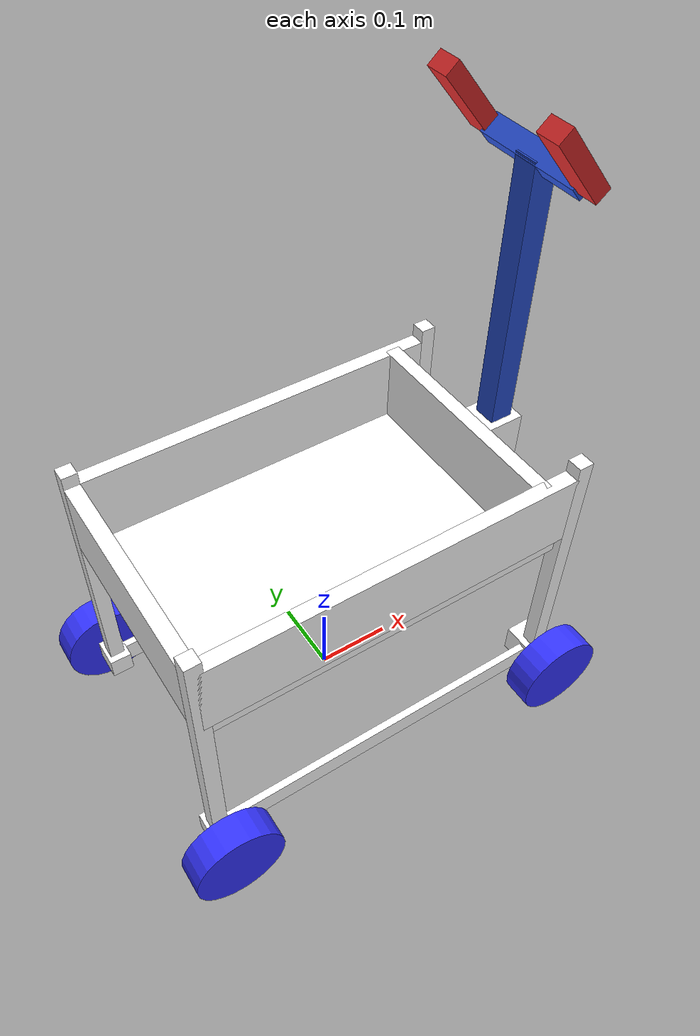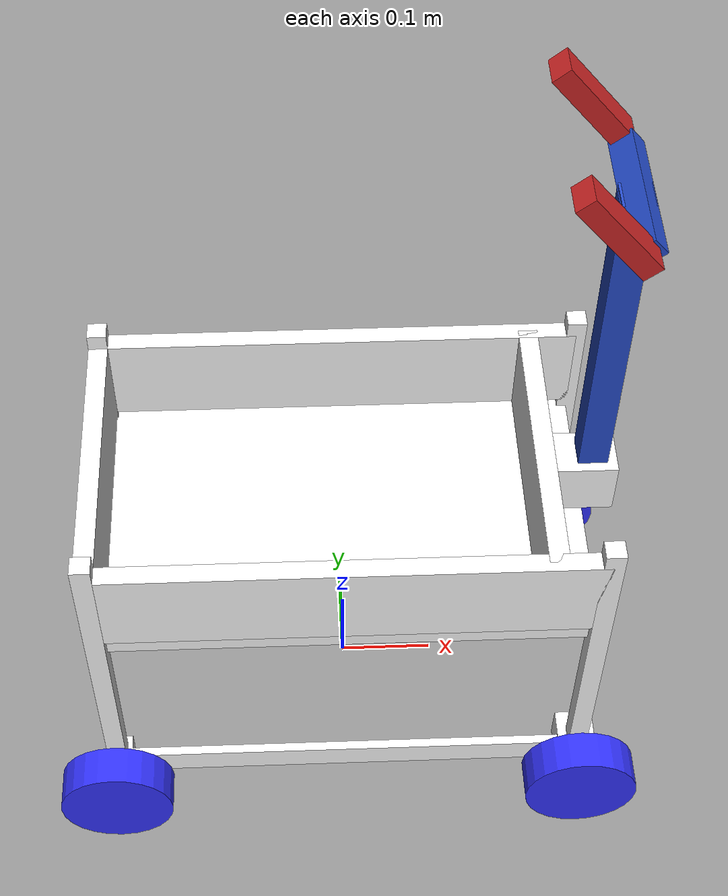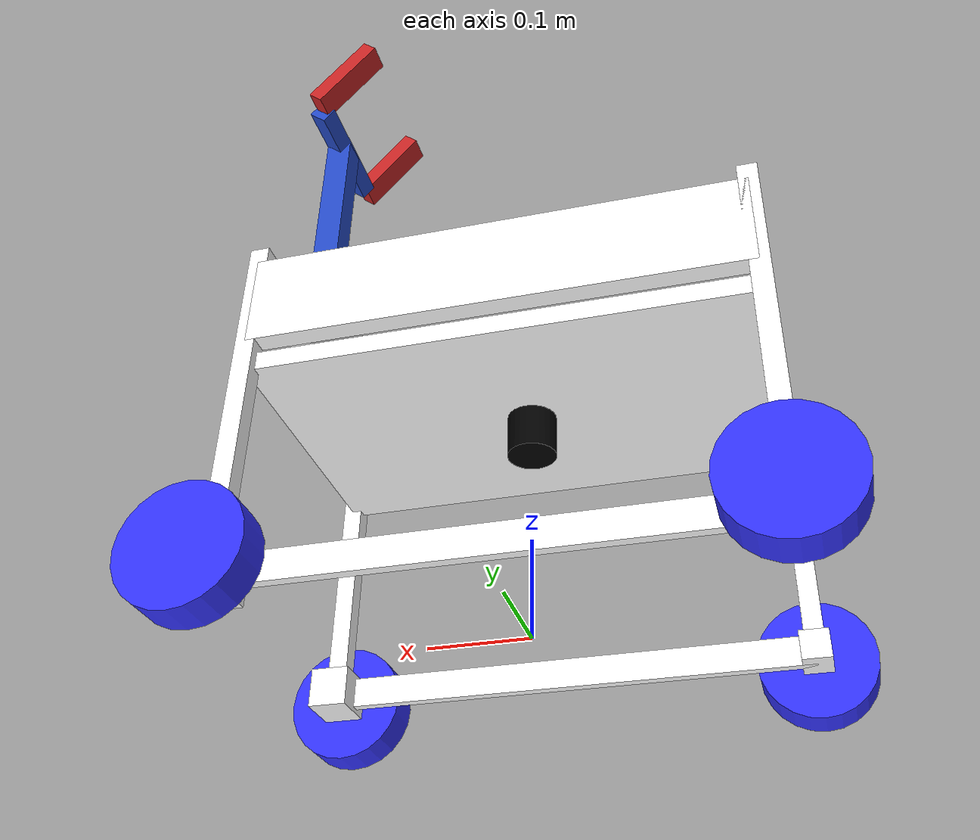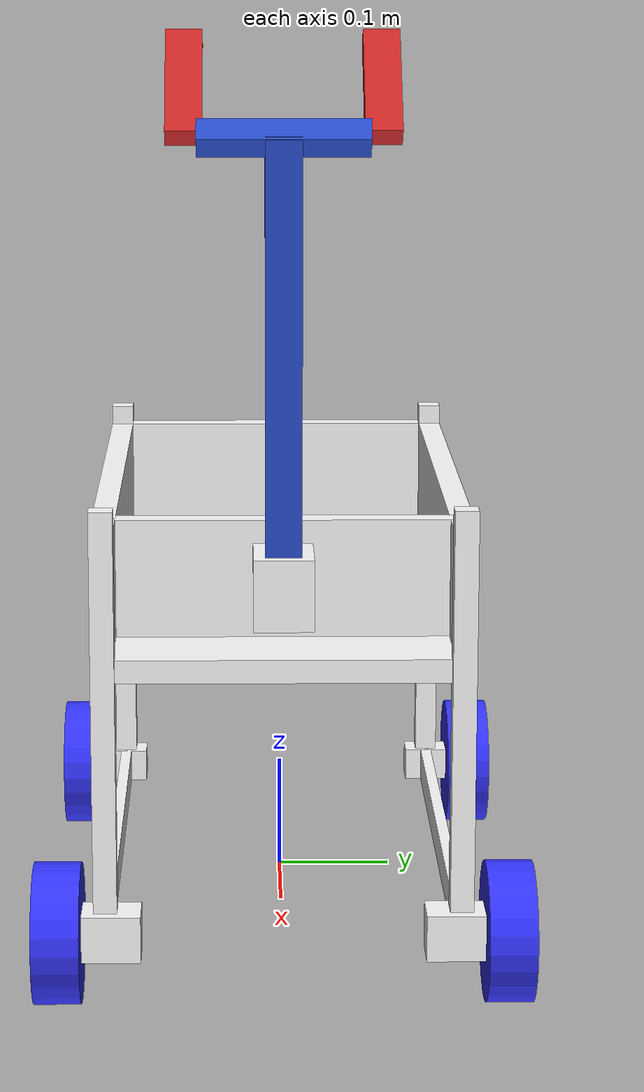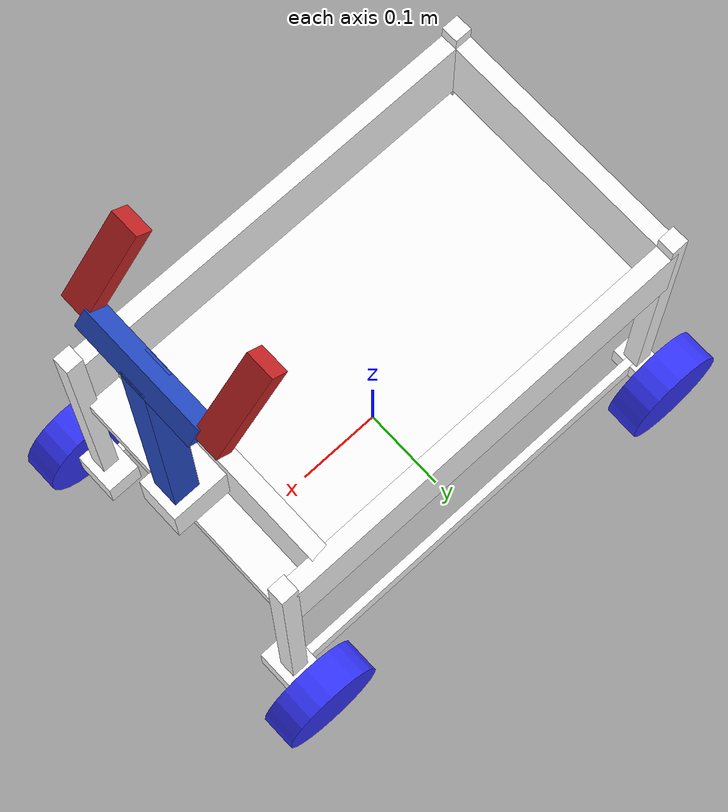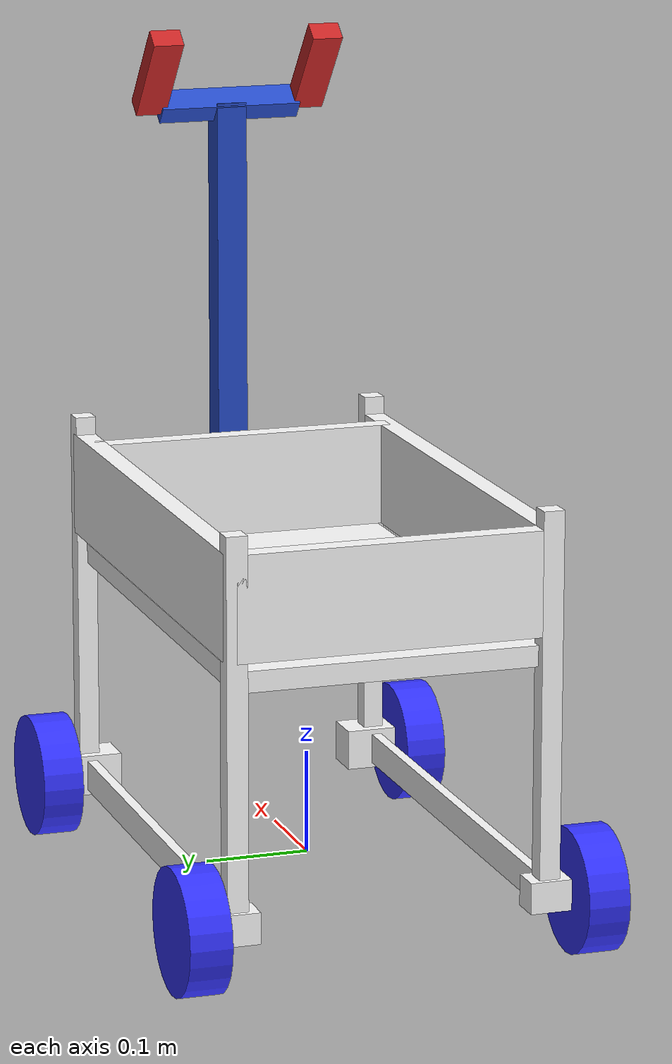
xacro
<?xml version="1.0"?>
<robot xmlns:xacro="http://www.ros.org/wiki/xacro"  name="robot">
    <xacro:include filename="robotproject_core.xacro" />
    <xacro:include filename="gazebo_control.xacro" />
    <xacro:include filename="grippu.xacro" />
    <xacro:include filename="lidar.xacro" />
    <xacro:include filename="arm_tr.xacro" />
    <xacro:include filename="gripper_tr.xacro" />
    <!--xacro:drive_controller/-->

    <ros2_control name="gripper_robot_gazebo_system" type="system">
        <hardware>
            <plugin>gazebo_ros2_control/GazeboSystem</plugin>
        </hardware>
        <xacro:arm_tr/>
        <xacro:gripper1_tr/>
        <xacro:gripper2_tr/>
    </ros2_control>
    <xacro:robot_controller/>
</robot>

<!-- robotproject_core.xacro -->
<robot xmlns:xacro="http://www.ros.org/wiki/xacro" >
<xacro:include filename="inertial_macros.xacro" />
    <material name="white">
        <color rgba="1 1 1 1" />
    </material>

    <material name="orange">
        <color rgba="1 0.3 0.1 1"/>
    </material>

    <material name="blue">
        <color rgba="0.2 0.2 1 1"/>
    </material>

    <material name="black">
        <color rgba="0 0 0 1"/>
    </material>

    <material name="red">
        <color rgba="1 0 0 1"/>
    </material>

    <!-- BASE LINK -->

    <link name="base_link">

    </link>

    <!-- BASE_FOOTPRINT LINK -->

    <joint name="base_footprint_joint" type="fixed">
    <parent link="base_link"/>
    <child link="base_footprint"/>
    <origin xyz="0 0 0" rpy="0 0 0"/>
    </joint>

    <link name="base_footprint">
    </link>

    <joint name="chassis_joint" type="fixed">
    <parent link="base_link"/>
    <child link="chassis"/>
    <origin xyz="0 0 0"/>
    </joint>

    <link name="chassis">
    <visual>
        <origin xyz="0.0 0 0.25" rpy="0 0 0"/>
        <geometry>
            <box size="0.5 0.3 0.02"/>
            <!--mesh filename="file:///home/tien/colcon_ws/articubot_one/description/body.dae" scale="1 1 1"/-->
        </geometry>
        <material name="white"/>
    </visual>
    <collision>
        <origin xyz="0.0 0 0.25" rpy="0 0 0"/>
        <geometry>
            <box size="0.5 0.3 0.02"/>
            <!--mesh filename="file:///home/tien/colcon_ws/articubot_one/description/body.dae" scale="1 1 1"/-->
        </geometry>
    </collision>
    <xacro:inertial_box mass="25" x="0.5" y="0.3" z="0.02">
        <origin xyz="0 0 0.25" rpy="0 0 0"/>
    </xacro:inertial_box>
    </link>
    <gazebo reference="chassis">
    <material>Gazebo/White</material>
    </gazebo>

    <joint name="chassis_joint1" type="fixed">
    <parent link="base_link"/>
    <child link="chassissidel"/>
    <origin xyz="0 0 0"/>
    </joint>

    <link name="chassissidel">
    <visual>
        <origin xyz="0 0.15 0.32" rpy="0 0 0"/>
        <geometry>
            <box size="0.5 0.02 0.1"/>
        </geometry>
        <material name="white"/>
    </visual>
    <collision>
        <origin xyz="0 0.15 0.32" rpy="0 0 0"/>
        <geometry>
            <box size="0.5 0.02 0.1"/>
        </geometry>
    </collision>
    <xacro:inertial_box mass="0.75" x="0.5" y="0.02" z="0.1">
        <origin xyz="0 0.15 0.32" rpy="0 0 0"/>
    </xacro:inertial_box>
    </link>
    <gazebo reference="chassissidel">
    <material>Gazebo/White</material>
    </gazebo>

    <joint name="chassis_joint2" type="fixed">
    <parent link="base_link"/>
    <child link="chassissider"/>
    <origin xyz="0 0 0"/>
    </joint>

    <link name="chassissider">
    <visual>
        <origin xyz="0 -0.15 0.32" rpy="0 0 0"/>
        <geometry>
            <box size="0.5 0.02 0.1"/>
        </geometry>
        <material name="white"/>
    </visual>
    <collision>
        <origin xyz="0 -0.15 0.32" rpy="0 0 0"/>
        <geometry>
            <box size="0.5 0.02 0.1"/>
        </geometry>
    </collision>
    <xacro:inertial_box mass="0.75" x="0.5" y="0.02" z="0.1">
        <origin xyz="0 -0.15 0.32" rpy="0 0 0"/>
    </xacro:inertial_box>
    </link>
    <gazebo reference="chassissider">
    <material>Gazebo/White</material>
    </gazebo>

    <joint name="chassis_joint3" type="fixed">
    <parent link="base_link"/>
    <child link="chassissidef"/>
    <origin xyz="0 0 0"/>
    </joint>

    <link name="chassissidef">
    <visual>
        <origin xyz="0.2 0 0.32" rpy="0 0 0"/>
        <geometry>
            <box size="0.02 0.3 0.1"/>
        </geometry>
        <material name="white"/>
    </visual>
    <collision>
        <origin xyz="0.2 0 0.32" rpy="0 0 0"/>
        <geometry>
            <box size="0.02 0.3 0.1"/>
        </geometry>
    </collision>
    </link>
    <gazebo reference="chassissidef">
    <material>Gazebo/White</material>
    </gazebo>

    <joint name="chassis_joint4" type="fixed">
    <parent link="base_link"/>
    <child link="chassissideb"/>
    <origin xyz="0 0 0"/>
    </joint>

    <link name="chassissideb">
    <visual>
        <origin xyz="-0.25 0 0.32" rpy="0 0 0"/>
        <geometry>
            <box size="0.02 0.3 0.1"/>
        </geometry>
        <material name="white"/>
    </visual>
    <collision>
        <origin xyz="-0.25 0 0.32" rpy="0 0 0"/>
        <geometry>
            <box size="0.02 0.3 0.1"/>
        </geometry>
    </collision>
    </link>
    <gazebo reference="chassissideb">
    <material>Gazebo/White</material>
    </gazebo>

    <joint name="chassis_joint5" type="fixed">
    <parent link="base_link"/>
    <child link="sao_fl"/>
    <origin xyz="0 0 0"/>
    </joint>

    <link name="sao_fl">
    <visual>
        <origin xyz="0.25 -0.15 0.2" rpy="0 0 0"/>
        <geometry>
            <box size="0.02 0.02 0.375"/>
        </geometry>
        <material name="white"/>
    </visual>
    <collision>
        <origin xyz="0.25 -0.15 0.2" rpy="0 0 0"/>
        <geometry>
            <box size="0.02 0.02 0.375"/>
        </geometry>
    </collision>
    </link>
    <gazebo reference="sao_fl">
    <material>Gazebo/White</material>
    </gazebo>

    <joint name="chassis_joint6" type="fixed">
    <parent link="base_link"/>
    <child link="sao_fr"/>
    <origin xyz="0 0 0"/>
    </joint>

    <link name="sao_fr">
    <visual>
        <origin xyz="0.25 0.15 0.2" rpy="0 0 0"/>
        <geometry>
            <box size="0.02 0.02 0.375"/>
        </geometry>
        <material name="white"/>
    </visual>
    <collision>
        <origin xyz="0.25 0.15 0.2" rpy="0 0 0"/>
        <geometry>
            <box size="0.02 0.02 0.375"/>
        </geometry>
    </collision>
    </link>
    <gazebo reference="sao_fr">
    <material>Gazebo/White</material>
    </gazebo>

    <joint name="chassis_joint7" type="fixed">
    <parent link="base_link"/>
    <child link="sao_br"/>
    <origin xyz="0 0 0"/>
    </joint>

    <link name="sao_br">
    <visual>
        <origin xyz="-0.25 0.15 0.2" rpy="0 0 0"/>
        <geometry>
            <box size="0.02 0.02 0.375"/>
        </geometry>
        <material name="white"/>
    </visual>
    <collision>
        <origin xyz="-0.25 0.15 0.2" rpy="0 0 0"/>
        <geometry>
            <box size="0.02 0.02 0.375"/>
        </geometry>
    </collision>
    </link>
    <gazebo reference="sao_br">
    <material>Gazebo/White</material>
    </gazebo>

    <joint name="chassis_joint8" type="fixed">
    <parent link="base_link"/>
    <child link="sao_bl"/>
    <origin xyz="0 0 0"/>
    </joint>

    <link name="sao_bl">
    <visual>
        <origin xyz="-0.25 -0.15 0.2" rpy="0 0 0"/>
        <geometry>
            <box size="0.02 0.02 0.375"/>
        </geometry>
        <material name="white"/>
    </visual>
    <collision>
        <origin xyz="-0.25 -0.15 0.2" rpy="0 0 0"/>
        <geometry>
            <box size="0.02 0.02 0.375"/>
        </geometry>
    </collision>
    </link>
    <gazebo reference="sao_bl">
    <material>Gazebo/White</material>
    </gazebo>

    <joint name="chassis_joint9" type="fixed">
    <parent link="base_link"/>
    <child link="grippermotor"/>
    <origin xyz="0 0 0"/>
    </joint>

    <link name="grippermotor">
    <visual>
        <origin xyz="0.24 0 0.32" rpy="0 0 0"/>
        <geometry>
            <box size="0.07 0.05 0.06"/>
        </geometry>
        <material name="white"/>
    </visual>
    <collision>
        <origin xyz="0.24 0 0.32" rpy="0 0 0"/>
        <geometry>
            <box size="0.07 0.05 0.06"/>
        </geometry>
    </collision>
    </link>
    <gazebo reference="grippermotor">
    <material>Gazebo/White</material>
    </gazebo>

    <joint name="chassis_joint10" type="fixed">
    <parent link="base_link"/>
    <child link="drivemotor_fl"/>
    <origin xyz="0 0 0"/>
    </joint>

    <link name="drivemotor_fl">
    <visual>
        <origin xyz="0.25 0.15 0.023" rpy="0 0 0"/>
        <geometry>
            <box size="0.04 0.06 0.04"/>
        </geometry>
        <material name="white"/>
    </visual>
    <collision>
        <origin xyz="0.25 0.15 0.023" rpy="0 0 0"/>
        <geometry>
            <box size="0.04 0.06 0.04"/>
        </geometry>
    </collision>
    </link>
    <gazebo reference="drivemotor_fl">
    <material>Gazebo/White</material>
    </gazebo>

    <joint name="chassis_joint11" type="fixed">
    <parent link="base_link"/>
    <child link="drivemotor_fr"/>
    <origin xyz="0 0 0"/>
    </joint>

    <link name="drivemotor_fr">
    <visual>
        <origin xyz="0.25 -0.15 0.023" rpy="0 0 0"/>
        <geometry>
            <box size="0.04 0.06 0.04"/>
        </geometry>
        <material name="white"/>
    </visual>
    <collision>
        <origin xyz="0.25 -0.15 0.023" rpy="0 0 0"/>
        <geometry>
            <box size="0.04 0.06 0.04"/>
        </geometry>
    </collision>
    </link>
    <gazebo reference="drivemotor_fr">
    <material>Gazebo/White</material>
    </gazebo>

    <joint name="chassis_joint12" type="fixed">
    <parent link="base_link"/>
    <child link="drivemotor_br"/>
    <origin xyz="0 0 0"/>
    </joint>

    <link name="drivemotor_br">
    <visual>
        <origin xyz="-0.25 -0.15 0.023" rpy="0 0 0"/>
        <geometry>
            <box size="0.03 0.04 0.03"/>
        </geometry>
        <material name="white"/>
    </visual>
    <collision>
        <origin xyz="-0.25 -0.15 0.023" rpy="0 0 0"/>
        <geometry>
            <box size="0.03 0.04 0.03"/>
        </geometry>
    </collision>
    </link>
    <gazebo reference="drivemotor_br">
    <material>Gazebo/White</material>
    </gazebo>

    <joint name="chassis_joint13" type="fixed">
    <parent link="base_link"/>
    <child link="drivemotor_bl"/>
    <origin xyz="0 0 0"/>
    </joint>

    <link name="drivemotor_bl">
    <visual>
        <origin xyz="-0.25 0.15 0.023" rpy="0 0 0"/>
        <geometry>
            <box size="0.03 0.04 0.03"/>
        </geometry>
        <material name="white"/>
    </visual>
    <collision>
        <origin xyz="-0.25 0.15 0.023" rpy="0 0 0"/>
        <geometry>
            <box size="0.03 0.04 0.03"/>
        </geometry>
    </collision>
    </link>
    <gazebo reference="drivemotor_bl">
    <material>Gazebo/White</material>
    </gazebo>

    <joint name="chassis_joint14" type="fixed">
    <parent link="base_link"/>
    <child link="sidebot_l"/>
    <origin xyz="0 0 0"/>
    </joint>

    <link name="sidebot_l">
    <visual>
        <origin xyz="0 0.15 0.023" rpy="0 0 0"/>
        <geometry>
            <box size="0.5 0.01 0.03"/>
        </geometry>
        <material name="white"/>
    </visual>
    <collision>
        <origin xyz="0 0.15 0.023" rpy="0 0 0"/>
        <geometry>
            <box size="0.5 0.01 0.03"/>
        </geometry>
    </collision>
    </link>
    <gazebo reference="sidebot_l">
    <material>Gazebo/White</material>
    </gazebo>

    <joint name="chassis_joint15" type="fixed">
    <parent link="base_link"/>
    <child link="sidebot_r"/>
    <origin xyz="0 0 0"/>
    </joint>

    <link name="sidebot_r">
    <visual>
        <origin xyz="0 -0.15 0.023" rpy="0 0 0"/>
        <geometry>
            <box size="0.5 0.01 0.03"/>
        </geometry>
        <material name="white"/>
    </visual>
    <collision>
        <origin xyz="0 -0.15 0.023" rpy="0 0 0"/>
        <geometry>
            <box size="0.5 0.01 0.03"/>
        </geometry>
    </collision>
    </link>
    <gazebo reference="sidebot_r">
    <material>Gazebo/White</material>
    </gazebo>

    <!-- Front LEFT WHEEL -->

    <joint name="Front_left_wheel_joint" type="continuous">
    <parent link="base_link"/>
    <child link="Front_left_wheel"/>
    <origin xyz="0.25 0.19 0.023" rpy="-${pi/2} 0 0"/>
    <axis xyz="0 0 1"/>
    </joint>

    <link name="Front_left_wheel">
    <visual>
        <geometry>
            <cylinder length="0.04" radius="0.06" />
        </geometry>
        <material name="blue"/>
    </visual>
    <collision>
        <geometry>
            <cylinder length="0.04" radius="0.06" />
        </geometry>
    </collision>
    <xacro:inertial_cylinder mass="0.2" length="0.05" radius="0.06">
        <origin xyz="0 0 0" rpy="0 0 0"/>
    </xacro:inertial_cylinder>
    </link>
    <gazebo reference="Front_left_wheel">
    <material>Gazebo/Black</material>
    </gazebo>

    <!-- Rear LEFT WHEEL -->

    <joint name="Rear_left_wheel_joint" type="continuous">
    <parent link="base_link"/>
    <child link="Rear_left_wheel"/>
    <origin xyz="-0.25 0.19 0.023" rpy="-${pi/2} 0 0"/>
    <axis xyz="0 0 1"/>
    </joint>

    <link name="Rear_left_wheel">
    <visual>
        <geometry>
            <cylinder length="0.04" radius="0.06" />
        </geometry>
        <material name="blue"/>
    </visual>
    <collision>
        <geometry>
            <cylinder length="0.04" radius="0.06" />
        </geometry>
    </collision>
    <xacro:inertial_cylinder mass="0.2" length="0.05" radius="0.06">
        <origin xyz="0 0 0" rpy="0 0 0"/>
    </xacro:inertial_cylinder>
    </link>
    <gazebo reference="Rear_left_wheel">
    <material>Gazebo/Black</material>
    <mu1 value="0.001"/>
    <mu2 value="0.001"/>
    </gazebo>

    <!-- Front RIGHT WHEEL -->

    <joint name="Front_right_wheel_joint" type="continuous">
    <parent link="base_link"/>
    <child link="Front_right_wheel"/>
    <origin xyz="0.25 -0.19 0.023" rpy="${pi/2} 0 0"/>
    <axis xyz="0 0 -1"/>
    </joint>

    <link name="Front_right_wheel">
    <visual>
        <geometry>
            <cylinder length="0.04" radius="0.06" />
        </geometry>
        <material name="blue"/>
    </visual>
    <collision>
        <geometry>
            <cylinder length="0.04" radius="0.06" />
        </geometry>
    </collision>
    <xacro:inertial_cylinder mass="0.2" length="0.05" radius="0.06">
        <origin xyz="0 0 0" rpy="0 0 0"/>
    </xacro:inertial_cylinder>
    </link>
    <gazebo reference="Front_right_wheel">
    <material>Gazebo/Black</material>
    </gazebo>

    <!-- Rear RIGHT WHEEL -->

    <joint name="Rear_right_wheel_joint" type="continuous">
    <parent link="base_link"/>
    <child link="Rear_right_wheel"/>
    <origin xyz="-0.25 -0.19 0.023" rpy="${pi/2} 0 0"/>
    <axis xyz="0 0 -1"/>
    </joint>

    <link name="Rear_right_wheel">
    <visual>
        <geometry>
            <cylinder length="0.04" radius="0.06" />
        </geometry>
        <material name="blue"/>
    </visual>
    <collision>
        <geometry>
            <cylinder length="0.04" radius="0.06" />
        </geometry>
    </collision>
    <xacro:inertial_cylinder mass="0.2" length="0.05" radius="0.06">
        <origin xyz="0 0 0" rpy="0 0 0"/>
    </xacro:inertial_cylinder>
    </link>
    <gazebo reference="Rear_right_wheel">
    <material>Gazebo/Black</material>
    <mu1 value="0.001"/>
    <mu2 value="0.001"/>
    </gazebo>

</robot>

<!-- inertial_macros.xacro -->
<robot xmlns:xacro="http://www.ros.org/wiki/xacro" >

    <!-- Specify some standard inertial calculations https://en.wikipedia.org/wiki/List_of_moments_of_inertia -->
    <!-- These make use of xacro's mathematical functionality -->

    <xacro:macro name="inertial_sphere" params="mass radius *origin">
        <inertial>
            <xacro:insert_block name="origin"/>
            <mass value="${mass}" />
            <inertia ixx="${(2/5) * mass * (radius*radius)}" ixy="0.0" ixz="0.0"
                    iyy="${(2/5) * mass * (radius*radius)}" iyz="0.0"
                    izz="${(2/5) * mass * (radius*radius)}" />
        </inertial>
    </xacro:macro>

    <xacro:macro name="inertial_box" params="mass x y z *origin">
        <inertial>
            <xacro:insert_block name="origin"/>
            <mass value="${mass}" />
            <inertia ixx="${(1/12) * mass * (y*y+z*z)}" ixy="0.0" ixz="0.0"
                    iyy="${(1/12) * mass * (x*x+z*z)}" iyz="0.0"
                    izz="${(1/12) * mass * (x*x+y*y)}" />
        </inertial>
    </xacro:macro>

    <xacro:macro name="inertial_cylinder" params="mass length radius *origin">
        <inertial>
            <xacro:insert_block name="origin"/>
            <mass value="${mass}" />
            <inertia ixx="${(1/12) * mass * (3*radius*radius + length*length)}" ixy="0.0" ixz="0.0"
                    iyy="${(1/12) * mass * (3*radius*radius + length*length)}" iyz="0.0"
                    izz="${(1/2) * mass * (radius*radius)}" />
        </inertial>
    </xacro:macro>

    <xacro:macro name="default_inertial" params="mass z_value i_value">
    	<inertial>
    	    <mass value="${mass}" />
      	    <origin xyz="0 0 ${z_value}" rpy="0 0 0" />
      	    <inertia ixx="${i_value}" ixy="0.0" ixz="0.0" iyy="${i_value}" iyz="0.0" izz="${i_value}" />
    	</inertial>
    </xacro:macro>

</robot>

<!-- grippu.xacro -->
<robot xmlns:xacro="http://www.ros.org/wiki/xacro" >
<xacro:include filename="inertial_macros.xacro" />

    <joint name="arm_joint" type="revolute">
        <parent link="chassis"/>
        <child link="arm"/>
        <origin xyz="0.25 0 0.32" rpy="0 0 0"/>
    	<axis xyz="0 1 0"/>
    	<limit effort="50" velocity="1" lower="-0.35" upper="2.3"/>
    	<dynamics damping="1" friction="1"/>
    </joint>

    <link name="arm">
        <visual>
            <origin xyz="0 0 0.1725" rpy="0 0 0"/>
            <geometry>
                <box size="0.03 0.03 0.4"/>
            </geometry>
        </visual>
        <collision>
            <origin xyz="0 0 0.1725" rpy="0 0 0"/>
            <geometry>
                <box size="0.03 0.03 0.4"/>
            </geometry>
        </collision>
        <xacro:inertial_box mass="0.08" x="0.03" y="0.03" z="0.4">
            <origin xyz="0 0 0" rpy="0 0 0"/>
        </xacro:inertial_box>
    </link>
    <gazebo reference="arm">
  	<material>Gazebo/Blue</material>
    </gazebo>

    <joint name="palm_joint" type="fixed">
        <parent link="arm"/>
        <child link="palm"/>
        <origin xyz="0 0 0.37" rpy="-0.7 0 1.5708"/>
    </joint>

    <link name="palm">
        <visual>
            <origin xyz="0 0 0" rpy="0 0 0"/>
            <geometry>
                <box size="0.14 0.025 0.02"/>
            </geometry>
        </visual>
        <collision>
            <origin xyz="0 0 0" rpy="0 0 0"/>
            <geometry>
                <box size="0.14 0.025 0.02"/>
            </geometry>
        </collision>
        <xacro:inertial_box mass="0.07" x="0.1" y="0.025" z="0.02">
            <origin xyz="0 0 0" rpy="0 0 0"/>
        </xacro:inertial_box>
    </link>
    <gazebo reference="palm">
  	<material>Gazebo/Blue</material>
    </gazebo>

    <joint name="finger1_joint" type="prismatic">
        <parent link="palm"/>
        <child link="finger1"/>
        <origin xyz="0.07 0 0" rpy="0 0 0"/>
        <axis xyz="-1 0 0"/>
        <limit effort="50" velocity="1" lower="0" upper="0.06"/>
        <dynamics damping="1" friction="2"/>
    </joint>

    <link name="finger1">
        <visual>
            <origin xyz="0.01 0 0.05" rpy="0 0 0"/>
            <geometry>
                <box size="0.03 0.02 0.1"/>
            </geometry>
        </visual>
        <collision>
            <origin xyz="0.01 0 0.05" rpy="0 0 0"/>
            <geometry>
                <box size="0.03 0.02 0.1"/>
            </geometry>
        </collision>
        <xacro:inertial_box mass="0.05" x="0.03" y="0.02" z="0.1">
            <origin xyz="0 0 0" rpy="0 0 0"/>
        </xacro:inertial_box>
    </link>
    <gazebo reference="finger1">
  	<material>Gazebo/Red</material>
  	<selfCollide>false</selfCollide>
    </gazebo>

    <joint name="finger2_joint" type="prismatic">
        <parent link="palm"/>
        <child link="finger2"/>
        <origin xyz="-0.07 0 0" rpy="0 0 0"/>
        <axis xyz="1 0 0"/>
        <limit effort="50" velocity="1" lower="0" upper="0.06"/>
        <dynamics damping="1" friction="2" />
    </joint>

    <link name="finger2">
        <visual>
            <origin xyz="-0.01 0 0.05" rpy="0 0 0"/>
            <geometry>
                <box size="0.03 0.02 0.1"/>
            </geometry>
        </visual>
        <collision>
            <origin xyz="-0.01 0 0.05" rpy="0 0 0"/>
            <geometry>
                <box size="0.03 0.02 0.1"/>
            </geometry>
        </collision>
        <xacro:inertial_box mass="0.05" x="0.03" y="0.02" z="0.1">
            <origin xyz="0 0 0" rpy="0 0 0"/>
        </xacro:inertial_box>
    </link>
    <gazebo reference="finger2">
  	<material>Gazebo/Red</material>
  	<selfCollide>false</selfCollide>
    </gazebo>

</robot>

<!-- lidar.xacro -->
<robot xmlns:xacro="http://www.ros.org/wiki/xacro" >

    <joint name="laser_joint" type="fixed">
        <parent link="chassis"/>
        <child link="laser_frame"/>
        <origin xyz="0 0 0.22" rpy="0 0 0"/>
    </joint>

    <link name="laser_frame">
        <visual>
            <geometry>
                <cylinder radius="0.025" length="0.05"/>
            </geometry>
            <material name="black"/>
        </visual>
        <collision>
            <geometry>
                <cylinder radius="0.025" length="0.05"/>
            </geometry>
        </collision>
        <xacro:inertial_cylinder mass="0.1" length="0.1" radius="0.025">
            <origin xyz="0 0 0" rpy="0 0 0"/>
        </xacro:inertial_cylinder>
    </link>

    <gazebo reference="laser_frame">
        <material>Gazebo/Black</material>

        <sensor name="laser" type="ray">
            <pose> 0 0 0 0 0 0 </pose>
            <visualize>true</visualize>
            <update_rate>10</update_rate>
            <ray>
                <scan>
                    <horizontal>
                        <samples>360></samples>
                        <min_angle>-3.14></min_angle>
                        <max_angle>3.14</max_angle>
                    </horizontal>
                </scan>
                <range>
                    <min>0.3</min>
                    <max>12</max>
                </range>
            </ray>

            <plugin name="laser_controller" filename="libgazebo_ros_ray_sensor.so">
                <ros>
                    <argument>~/out:=scan</argument>
                </ros>
                <output_type>sensor_msgs/LaserScan</output_type>
                <frame_name>laser_frame</frame_name>
            </plugin>
        </sensor>
    </gazebo>

</robot>
